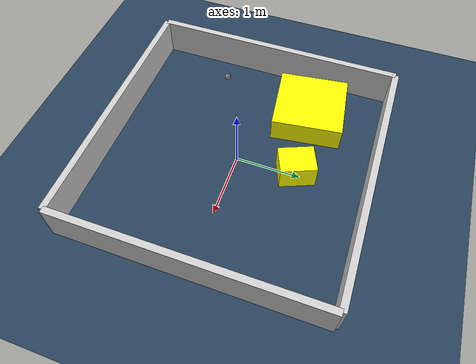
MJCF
<?xml version="1.0" ?>
<mujoco model="generated_environment">
  <option timestep="0.01" integrator="RK4" cone="elliptic"/>
  <default>
    <geom density="1"/>
  </default>
  <asset>
    <texture builtin="gradient" height="3072" rgb1="0.3 0.5 0.7" rgb2="0 0 0" type="skybox" width="512"/>
    <texture builtin="checker" height="300" mark="edge" markrgb="0.8 0.8 0.8" name="groundplane" rgb1="0.2 0.3 0.4" rgb2="0.1 0.2 0.3" type="2d" width="300"/>
    <material name="groundplane" reflectance="0.2" texrepeat="5 5" texture="groundplane" texuniform="true"/>
    <material name="robot" rgba="0.0 1.0 0.0 1"/>
  </asset>
  <worldbody>
    <light dir="0 0 -1" directional="true" pos="0 0 1.5"/>
    <geom condim="4" friction="1.0 0.005 0.001" material="groundplane" name="floor" size="0 0 0.05" type="plane"/>
    <body name="walls">
      <geom name="wall_1" condim="4" pos="-2.0 0.0 0.3" rgba="0.800000011920929 0.800000011920929 0.800000011920929 1.0" size="0.05 2.0 0.3" type="box"/>
      <geom name="wall_2" condim="4" pos="2.0 0.0 0.3" rgba="0.800000011920929 0.800000011920929 0.800000011920929 1.0" size="0.05 2.0 0.3" type="box"/>
      <geom name="wall_3" condim="4" pos="0.0 -2.0 0.3" rgba="0.800000011920929 0.800000011920929 0.800000011920929 1.0" size="2.0 0.05 0.3" type="box"/>
      <geom name="wall_4" condim="4" pos="0.0 2.0 0.3" rgba="0.800000011920929 0.800000011920929 0.800000011920929 1.0" size="2.0 0.05 0.3" type="box"/>
    </body>
    <body name="robot">
      <joint name="joint_x" type="slide" pos="0 0 0" axis="1 0 0"/>
      <joint name="joint_y" type="slide" pos="0 0 0" axis="0 1 0"/>
      <geom name="robot" type="sphere" pos="-1.4387095629926585 -0.6764197390155817 0.2" size="0.05" mass="5." friction="1.0 0.005 0.0001" condim="4"/>
      <site name="sensor_ball"/>
    </body>
    <body name="obstacle_1_movable">
      <geom name="obstacle_1_movable" condim="4" pos="-0.03654599654387081 0.9239126641898063 0.2" euler="0 0 202.65011711548962" friction="1.0 0.005 0.001" rgba="1 1 0 1" size="0.2145513477998555 0.27159805355848965 0.2" type="box" mass="0.1"/>
      <joint type="free"/>
    </body>
    <body name="obstacle_2_movable">
      <geom name="obstacle_2_movable" condim="4" pos="-1.1838254070562164 0.8319588109627807 0.2" euler="0 0 97.39320423477976" friction="1.0 0.005 0.001" rgba="1 1 0 1" size="0.5436991484539717 0.5352983997206064 0.2" type="box" mass="0.1"/>
      <joint type="free"/>
    </body>
  </worldbody>
  <actuator>
    <motor name="actuator_x" joint="joint_x" gear="1" ctrlrange="-1 1"/>
    <motor name="actuator_y" joint="joint_y" gear="1" ctrlrange="-1 1"/>
  </actuator>
</mujoco>
